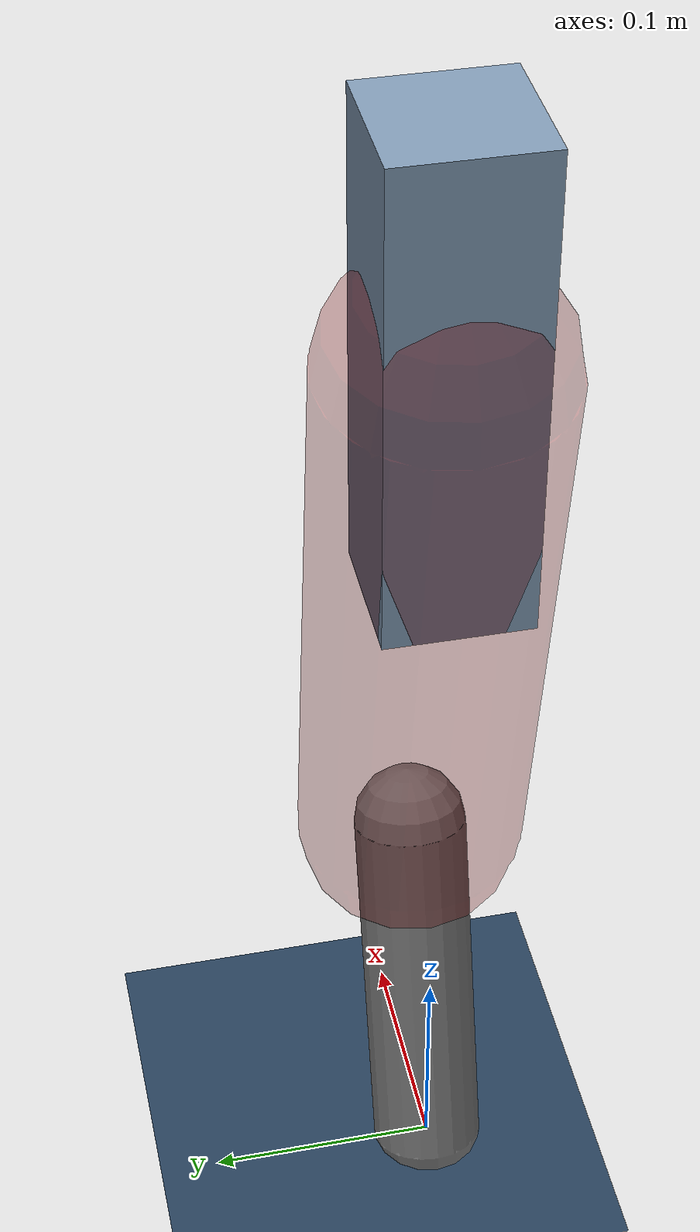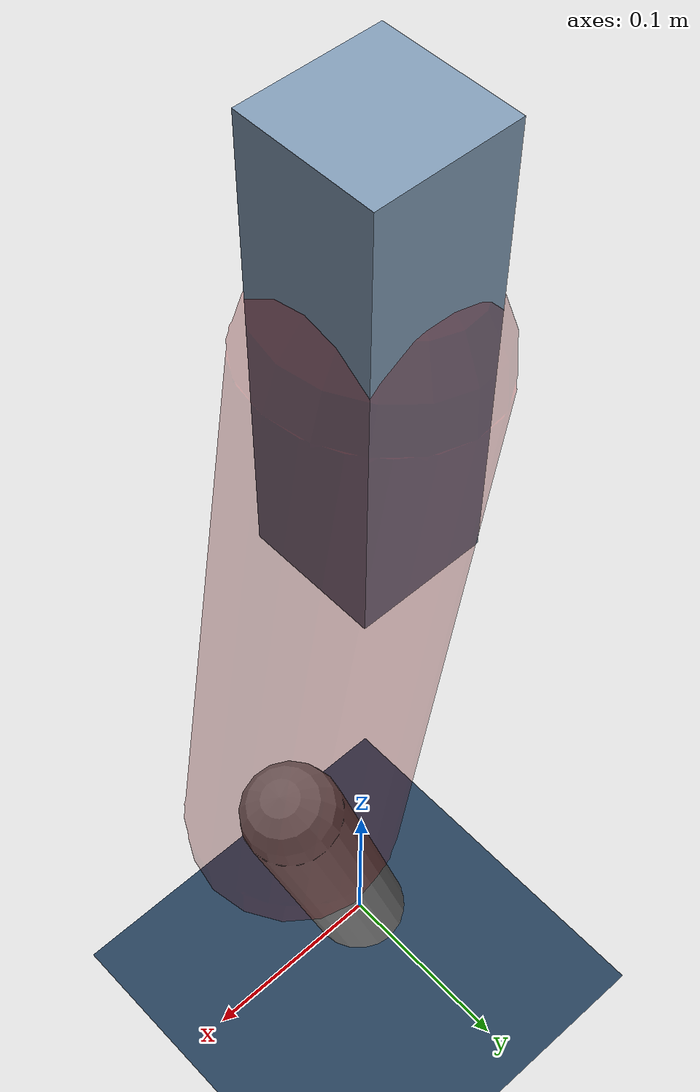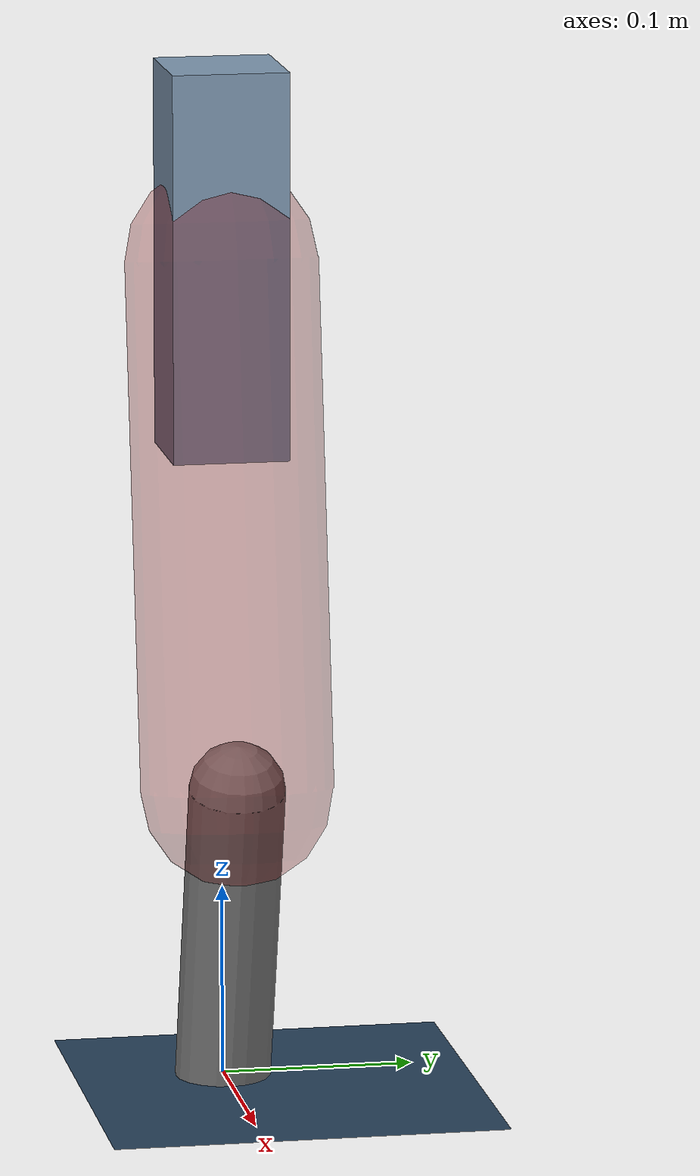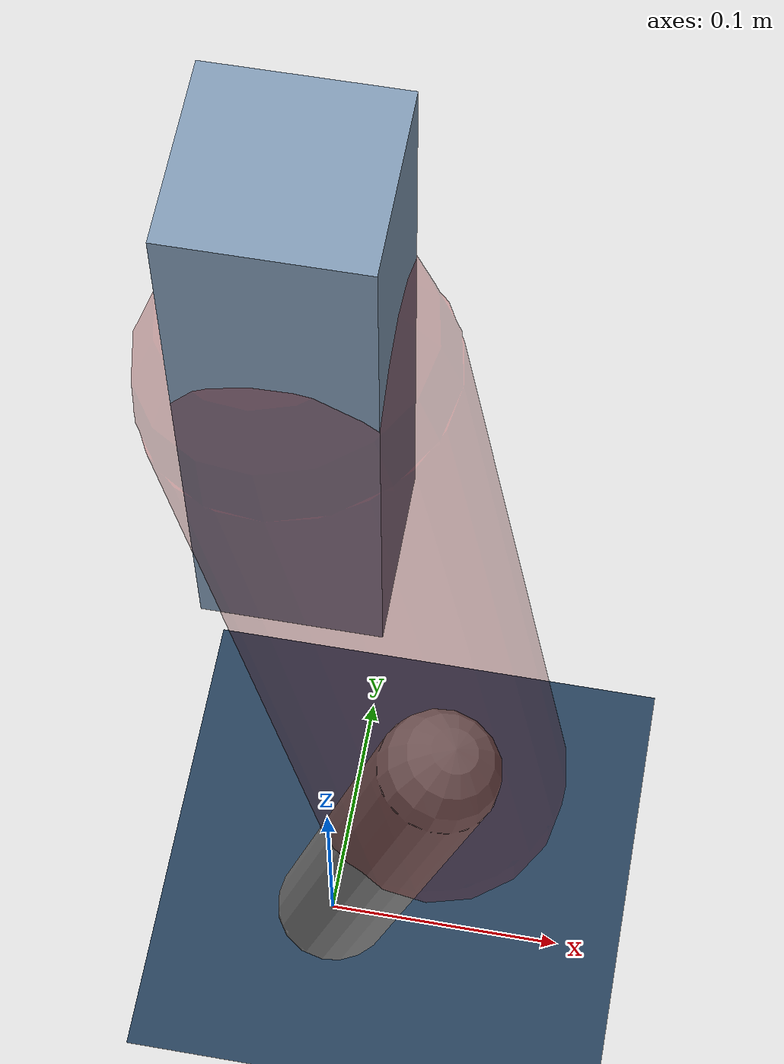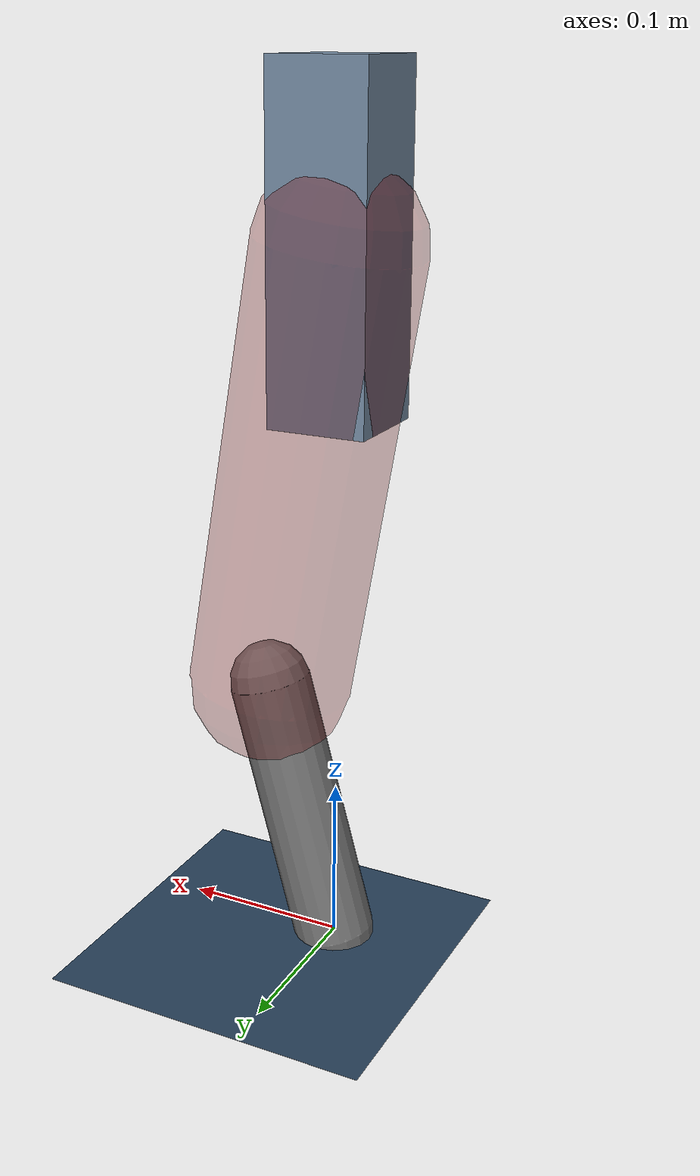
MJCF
<mujoco model="Hopper2D">
	<compiler inertiafromgeom="true" angle="radian" />
	<option timestep="0.001" integrator="implicit" cone="elliptic" solver="Newton" tolerance="1e-10" />

	<default>
		<geom contype="1" conaffinity="1" condim="3" friction="2 0.005 0.0001" solref="0.005 1" />
		<joint limited="true" damping="0.1" />
	</default>

	<asset>
		<texture name="skybox" type="skybox" builtin="gradient" rgb1=".4 .6 .8" rgb2="0 0 0" width="800" height="800" />
		<texture name="grid" type="2d" builtin="checker" rgb1=".1 .2 .3" rgb2=".2 .3 .4" width="300" height="300" mark="edge" markrgb=".2 .3 .4" />
		<material name="ground" texture="grid" texrepeat="1 1" texuniform="true" reflectance="0.1" />
		<material name="leg" rgba="0.5 0.6 0.7 1" />
	</asset>

	<worldbody>

		<geom name="floor" type="plane" size="5 5 0.25" material="ground" />

		<light directional="false" diffuse="0.8 0.8 0.8" specular="0.3 0.3 0.3" pos="0 0 2" dir="0 0 -1" />
		<light mode="targetbodycom" target="base" directional="false" diffuse="0.8 0.8 0.8" specular="0.3 0.3 0.3" pos="0 0 2" dir="0 0 -1" />

		<camera name="fixed" pos="0 -2 1" xyaxes="1 0 0 0 0 1" />
		<camera name="tracking" mode="trackcom" pos="0 -3 1" />

		<body name="root" pos="0 0 0.43039095185501064">
			<joint name="slide_x" type="slide" axis="1 0 0" range="-100 100" />
			<joint name="slide_z" type="slide" axis="0 0 1" range="0 10" />

			<body name="base" pos="0 0 0">
				<geom name="torso" type="box" size="0.03 0.03 0.1" mass="2.588" material="leg" />

				<body name="link1" pos="0 0 0" euler="0 1.4029086637987134 0">
					<joint type="hinge" axis="0 -1 0" pos="0 0 0" name="hinge1" limited="true" range="-3.14 3.14" stiffness="0" damping="0.1" />
					<geom name="thigh" type="capsule" fromto="0 0 0 0.2712492538342898 0 0" size="0.05" rgba="0.5 0 0 0.3" mass="0.9119480599691535" />

					<body name="link2" pos="0.2712492538342898 0 0" euler="0 0.4391783703126819 0">
						<joint type="hinge" axis="0 -1 0" pos="0 0 0" name="hinge2" limited="true" range="-3.14 3.14" stiffness="0" damping="0.1" />
						<geom name="shank" type="capsule" fromto="0 0 0 0.16914169802072082 0 0" size="0.025" mass="0.37452752821864876" />

					</body>
				</body>
			</body>
		</body>
	</worldbody>

	<actuator>
		<motor name="torque1" joint="hinge1" ctrlrange="-74.91741850701054 74.91741850701054" ctrllimited="true" gear="1" />
		<motor name="torque2" joint="hinge2" ctrlrange="-44.83601069567955 44.83601069567955" ctrllimited="true" gear="1" />
	</actuator>
</mujoco>
